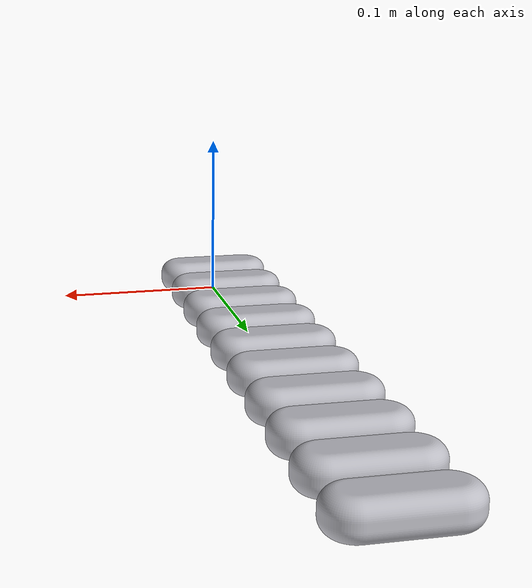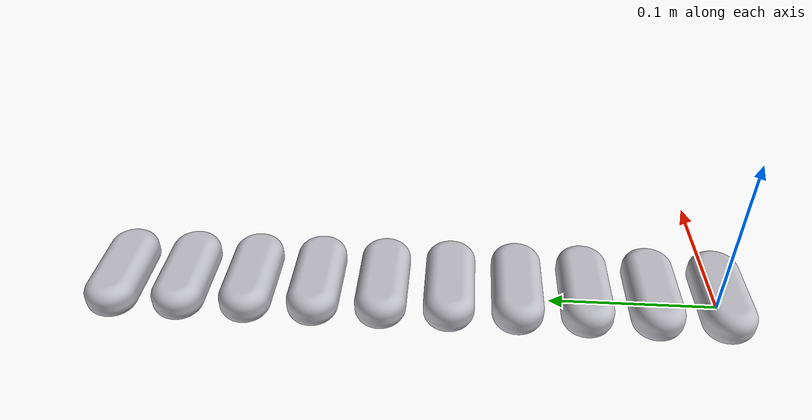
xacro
<?xml version="1.0" ?>
<robot name="Capsule_robot" xmlns:xacro="http://www.ros.org/wiki/xacro">

<link name="base_link">
  <inertial>
    <origin xyz="8.44397401873128e-18 2.11099350468282e-18 0.01" rpy="0 0 0"/>
    <mass value="0.2642244262402339"/>
    <inertia ixx="2.3e-05" iyy="9.4e-05" izz="0.000103" ixy="0.0" iyz="0.0" ixz="0.0"/>
  </inertial>
  <visual>
    <origin xyz="0 0 0" rpy="0 0 0"/>
    <geometry>
      <mesh filename="file://$(find Capsule_robot_description)/meshes/base_link.stl" scale="0.001 0.001 0.001"/>
    </geometry>
    <material name="silver"/>
  </visual>
  <collision>
    <origin xyz="0 0 0" rpy="0 0 0"/>
    <geometry>
      <mesh filename="file://$(find Capsule_robot_description)/meshes/base_link.stl" scale="0.001 0.001 0.001"/>
    </geometry>
  </collision>
</link>

<link name="Capsule2_1">
  <inertial>
    <origin xyz="8.44397401873128e-18 0.02 0.0" rpy="0 0 0"/>
    <mass value="0.2642244262402339"/>
    <inertia ixx="2.3e-05" iyy="9.4e-05" izz="0.000103" ixy="0.0" iyz="0.0" ixz="0.0"/>
  </inertial>
  <visual>
    <origin xyz="-0.0 -0.02 -0.01" rpy="0 0 0"/>
    <geometry>
      <mesh filename="file://$(find Capsule_robot_description)/meshes/Capsule2_1.stl" scale="0.001 0.001 0.001"/>
    </geometry>
    <material name="silver"/>
  </visual>
  <collision>
    <origin xyz="-0.0 -0.02 -0.01" rpy="0 0 0"/>
    <geometry>
      <mesh filename="file://$(find Capsule_robot_description)/meshes/Capsule2_1.stl" scale="0.001 0.001 0.001"/>
    </geometry>
  </collision>
</link>

<link name="Capsule3_1">
  <inertial>
    <origin xyz="8.44397401873128e-18 0.020000000000000004 0.0" rpy="0 0 0"/>
    <mass value="0.2642244262402339"/>
    <inertia ixx="2.3e-05" iyy="9.4e-05" izz="0.000103" ixy="0.0" iyz="0.0" ixz="0.0"/>
  </inertial>
  <visual>
    <origin xyz="-0.0 -0.06 -0.01" rpy="0 0 0"/>
    <geometry>
      <mesh filename="file://$(find Capsule_robot_description)/meshes/Capsule3_1.stl" scale="0.001 0.001 0.001"/>
    </geometry>
    <material name="silver"/>
  </visual>
  <collision>
    <origin xyz="-0.0 -0.06 -0.01" rpy="0 0 0"/>
    <geometry>
      <mesh filename="file://$(find Capsule_robot_description)/meshes/Capsule3_1.stl" scale="0.001 0.001 0.001"/>
    </geometry>
  </collision>
</link>

<link name="Capsule4_1">
  <inertial>
    <origin xyz="8.44397401873128e-18 0.01999999999999999 0.0" rpy="0 0 0"/>
    <mass value="0.2642244262402339"/>
    <inertia ixx="2.3e-05" iyy="9.4e-05" izz="0.000103" ixy="0.0" iyz="0.0" ixz="0.0"/>
  </inertial>
  <visual>
    <origin xyz="-0.0 -0.1 -0.01" rpy="0 0 0"/>
    <geometry>
      <mesh filename="file://$(find Capsule_robot_description)/meshes/Capsule4_1.stl" scale="0.001 0.001 0.001"/>
    </geometry>
    <material name="silver"/>
  </visual>
  <collision>
    <origin xyz="-0.0 -0.1 -0.01" rpy="0 0 0"/>
    <geometry>
      <mesh filename="file://$(find Capsule_robot_description)/meshes/Capsule4_1.stl" scale="0.001 0.001 0.001"/>
    </geometry>
  </collision>
</link>

<link name="Capsule5_1">
  <inertial>
    <origin xyz="8.44397401873128e-18 0.01999999999999999 0.0" rpy="0 0 0"/>
    <mass value="0.2642244262402339"/>
    <inertia ixx="2.3e-05" iyy="9.4e-05" izz="0.000103" ixy="0.0" iyz="0.0" ixz="0.0"/>
  </inertial>
  <visual>
    <origin xyz="-0.0 -0.14 -0.01" rpy="0 0 0"/>
    <geometry>
      <mesh filename="file://$(find Capsule_robot_description)/meshes/Capsule5_1.stl" scale="0.001 0.001 0.001"/>
    </geometry>
    <material name="silver"/>
  </visual>
  <collision>
    <origin xyz="-0.0 -0.14 -0.01" rpy="0 0 0"/>
    <geometry>
      <mesh filename="file://$(find Capsule_robot_description)/meshes/Capsule5_1.stl" scale="0.001 0.001 0.001"/>
    </geometry>
  </collision>
</link>

<link name="Capsule6_1">
  <inertial>
    <origin xyz="8.44397401873128e-18 0.020000000000000018 0.0" rpy="0 0 0"/>
    <mass value="0.2642244262402339"/>
    <inertia ixx="2.3e-05" iyy="9.4e-05" izz="0.000103" ixy="0.0" iyz="0.0" ixz="0.0"/>
  </inertial>
  <visual>
    <origin xyz="-0.0 -0.18 -0.01" rpy="0 0 0"/>
    <geometry>
      <mesh filename="file://$(find Capsule_robot_description)/meshes/Capsule6_1.stl" scale="0.001 0.001 0.001"/>
    </geometry>
    <material name="silver"/>
  </visual>
  <collision>
    <origin xyz="-0.0 -0.18 -0.01" rpy="0 0 0"/>
    <geometry>
      <mesh filename="file://$(find Capsule_robot_description)/meshes/Capsule6_1.stl" scale="0.001 0.001 0.001"/>
    </geometry>
  </collision>
</link>

<link name="Capsule7_1">
  <inertial>
    <origin xyz="8.44397401873128e-18 0.01999999999999999 0.0" rpy="0 0 0"/>
    <mass value="0.2642244262402339"/>
    <inertia ixx="2.3e-05" iyy="9.4e-05" izz="0.000103" ixy="0.0" iyz="0.0" ixz="0.0"/>
  </inertial>
  <visual>
    <origin xyz="-0.0 -0.22 -0.01" rpy="0 0 0"/>
    <geometry>
      <mesh filename="file://$(find Capsule_robot_description)/meshes/Capsule7_1.stl" scale="0.001 0.001 0.001"/>
    </geometry>
    <material name="silver"/>
  </visual>
  <collision>
    <origin xyz="-0.0 -0.22 -0.01" rpy="0 0 0"/>
    <geometry>
      <mesh filename="file://$(find Capsule_robot_description)/meshes/Capsule7_1.stl" scale="0.001 0.001 0.001"/>
    </geometry>
  </collision>
</link>

<link name="Capsule8_1">
  <inertial>
    <origin xyz="8.44397401873128e-18 0.020000000000000018 0.0" rpy="0 0 0"/>
    <mass value="0.2642244262402339"/>
    <inertia ixx="2.3e-05" iyy="9.4e-05" izz="0.000103" ixy="0.0" iyz="0.0" ixz="0.0"/>
  </inertial>
  <visual>
    <origin xyz="-0.0 -0.26 -0.01" rpy="0 0 0"/>
    <geometry>
      <mesh filename="file://$(find Capsule_robot_description)/meshes/Capsule8_1.stl" scale="0.001 0.001 0.001"/>
    </geometry>
    <material name="silver"/>
  </visual>
  <collision>
    <origin xyz="-0.0 -0.26 -0.01" rpy="0 0 0"/>
    <geometry>
      <mesh filename="file://$(find Capsule_robot_description)/meshes/Capsule8_1.stl" scale="0.001 0.001 0.001"/>
    </geometry>
  </collision>
</link>

<link name="Capsule9_1">
  <inertial>
    <origin xyz="8.44397401873128e-18 0.020000000000000018 0.0" rpy="0 0 0"/>
    <mass value="0.2642244262402339"/>
    <inertia ixx="2.3e-05" iyy="9.4e-05" izz="0.000103" ixy="0.0" iyz="0.0" ixz="0.0"/>
  </inertial>
  <visual>
    <origin xyz="-0.0 -0.3 -0.01" rpy="0 0 0"/>
    <geometry>
      <mesh filename="file://$(find Capsule_robot_description)/meshes/Capsule9_1.stl" scale="0.001 0.001 0.001"/>
    </geometry>
    <material name="silver"/>
  </visual>
  <collision>
    <origin xyz="-0.0 -0.3 -0.01" rpy="0 0 0"/>
    <geometry>
      <mesh filename="file://$(find Capsule_robot_description)/meshes/Capsule9_1.stl" scale="0.001 0.001 0.001"/>
    </geometry>
  </collision>
</link>

<link name="Capsule10_1">
  <inertial>
    <origin xyz="8.44397401873128e-18 0.019999999999999962 0.0" rpy="0 0 0"/>
    <mass value="0.2642244262402339"/>
    <inertia ixx="2.3e-05" iyy="9.4e-05" izz="0.000103" ixy="0.0" iyz="0.0" ixz="0.0"/>
  </inertial>
  <visual>
    <origin xyz="-0.0 -0.34 -0.01" rpy="0 0 0"/>
    <geometry>
      <mesh filename="file://$(find Capsule_robot_description)/meshes/Capsule10_1.stl" scale="0.001 0.001 0.001"/>
    </geometry>
    <material name="silver"/>
  </visual>
  <collision>
    <origin xyz="-0.0 -0.34 -0.01" rpy="0 0 0"/>
    <geometry>
      <mesh filename="file://$(find Capsule_robot_description)/meshes/Capsule10_1.stl" scale="0.001 0.001 0.001"/>
    </geometry>
  </collision>
</link>

<joint name="Revolute 1" type="continuous">
  <origin xyz="0.0 0.02 0.01" rpy="0 0 0"/>
  <parent link="base_link"/>
  <child link="Capsule2_1"/>
  <axis xyz="0.0 0.0 -1.0"/>
</joint>

<joint name="Revolute 2" type="continuous">
  <origin xyz="0.0 0.04 0.0" rpy="0 0 0"/>
  <parent link="Capsule2_1"/>
  <child link="Capsule3_1"/>
  <axis xyz="0.0 0.0 -1.0"/>
</joint>

<joint name="Revolute 3" type="continuous">
  <origin xyz="0.0 0.04 0.0" rpy="0 0 0"/>
  <parent link="Capsule3_1"/>
  <child link="Capsule4_1"/>
  <axis xyz="0.0 0.0 -1.0"/>
</joint>

<joint name="Revolute 4" type="continuous">
  <origin xyz="0.0 0.04 0.0" rpy="0 0 0"/>
  <parent link="Capsule4_1"/>
  <child link="Capsule5_1"/>
  <axis xyz="0.0 0.0 -1.0"/>
</joint>

<joint name="Revolute 5" type="continuous">
  <origin xyz="0.0 0.04 0.0" rpy="0 0 0"/>
  <parent link="Capsule5_1"/>
  <child link="Capsule6_1"/>
  <axis xyz="0.0 0.0 -1.0"/>
</joint>

<joint name="Revolute 6" type="continuous">
  <origin xyz="0.0 0.04 0.0" rpy="0 0 0"/>
  <parent link="Capsule6_1"/>
  <child link="Capsule7_1"/>
  <axis xyz="0.0 0.0 -1.0"/>
</joint>

<joint name="Revolute 7" type="continuous">
  <origin xyz="0.0 0.04 0.0" rpy="0 0 0"/>
  <parent link="Capsule7_1"/>
  <child link="Capsule8_1"/>
  <axis xyz="0.0 0.0 -1.0"/>
</joint>

<joint name="Revolute 8" type="continuous">
  <origin xyz="0.0 0.04 0.0" rpy="0 0 0"/>
  <parent link="Capsule8_1"/>
  <child link="Capsule9_1"/>
  <axis xyz="0.0 0.0 -1.0"/>
</joint>

<joint name="Revolute 9" type="continuous">
  <origin xyz="0.0 0.04 0.0" rpy="0 0 0"/>
  <parent link="Capsule9_1"/>
  <child link="Capsule10_1"/>
  <axis xyz="0.0 0.0 -1.0"/>
</joint>

</robot>
